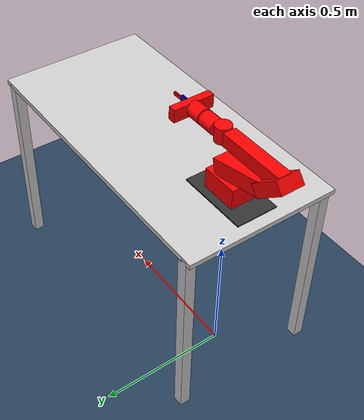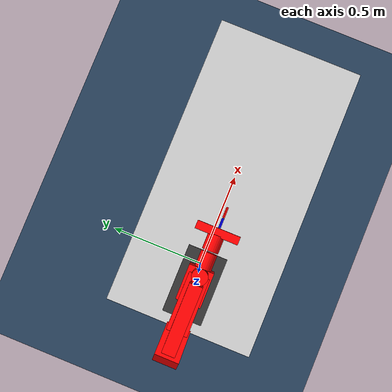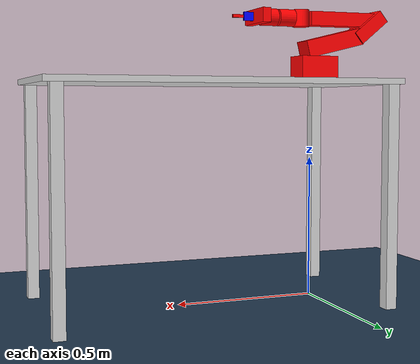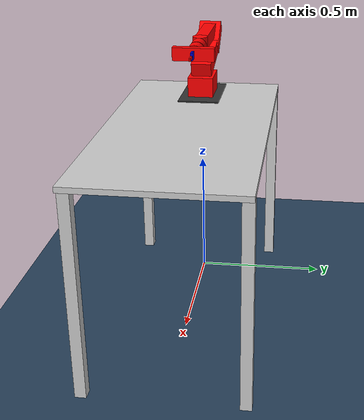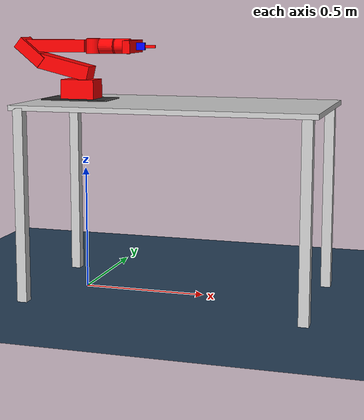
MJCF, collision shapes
<mujoco model="airbot_play">

  <compiler angle="radian" meshdir="../../meshes/" texturedir="../../meshes/" autolimits="true"/>
  <option integrator="implicitfast" />

  <include file="../scene/skybox.xml"/>
  <include file="airbot_play/airbot_play_dependencies.xml"/>
  <include file="airbot_play/airbot_play_appendix.xml"/>

  <worldbody>
    <body name="airbot_play_pose" pos="0 0 0.78" euler="0 0 0">
      <include file="airbot_play/airbot_play.xml"/>
    </body>
  </worldbody>

  <actuator>
    <include file="airbot_play/airbot_play_control.xml"/>
  </actuator>

  <sensor>
    <include file="airbot_play/airbot_play_sensor.xml"/>
  </sensor>

  <keyframe>
    <key name="home" qpos='0 -1 1.2 1.5708 -1.2 -1.5708 0 0' ctrl='0 -1 1.2 1.5708 -1.2 -1.5708 0'/>
  </keyframe>

</mujoco>

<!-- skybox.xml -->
<mujocoinclude>
  <statistic center="0.3 0 0.4" extent="1"/>
  <visual>
    <headlight diffuse="0.6 0.6 0.6" ambient="0.3 0.3 0.3" specular="0 0 0"/>
    <rgba haze="0.15 0.25 0.35 1"/>
    <global azimuth="120" elevation="-20"/>
  </visual>
  <asset>
    <texture type="skybox" builtin="gradient" rgb1="0.3 0.5 0.7" rgb2="0 0 0" width="512" height="3072"/>
    <texture type="2d" name="groundplane" builtin="checker" mark="edge" rgb1="0.2 0.3 0.4" rgb2="0.1 0.2 0.3" markrgb="0.8 0.8 0.8" width="300" height="300"/>
    <material name="groundplane" texture="groundplane" texuniform="true" texrepeat="5 5" reflectance="0.2"/>
  </asset>
  <worldbody>
    <camera name="high" pos="0.851 -1.066 1.602" xyaxes="0.915 0.404 0.000 -0.126 0.285 0.950"/>
    <camera name="low" pos="0.524 -0.747 1.248" xyaxes="0.921 0.389 -0.000 -0.114 0.269 0.956"/>
    <light pos="1 0 2." dir="-0.5 0 -0.8"/>
    <geom name="floor" size="0 0 0.05" type="plane" material="groundplane"/>
    <body name="skybox_table" pos="0.4 0 0" euler="0 0 1.5708">
      <geom size="0.3 0.6 0.01" pos="0 0 0.77" type="box" rgba="0.8 0.8 0.8 1" condim="4" solimp="2 1 0.01" solref="0.01 1" friction="1 0.005 0.0001"/>
      <geom size="0.02 0.02 0.385" pos=" 0.28  0.56 0.385" type="box" contype="0" conaffinity="0" rgba="0.8 0.8 0.8 1" />
      <geom size="0.02 0.02 0.385" pos="-0.28  0.56 0.385" type="box" contype="0" conaffinity="0" rgba="0.8 0.8 0.8 1" />
      <geom size="0.02 0.02 0.385" pos=" 0.28 -0.56 0.385" type="box" contype="0" conaffinity="0" rgba="0.8 0.8 0.8 1" />
      <geom size="0.02 0.02 0.385" pos="-0.28 -0.56 0.385" type="box" contype="0" conaffinity="0" rgba="0.8 0.8 0.8 1" />
    </body>
  </worldbody>
</mujocoinclude>

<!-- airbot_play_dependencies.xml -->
<mujocoinclude>
  <default>

    <default class='aribot_play'>
      <default class="visual">
        <geom group="2" type="mesh" contype="0" conaffinity="0"/>
      </default>
      <default class="collision">
        <geom group="3" condim="6" solimp="2 1 0.01" solref="0.001 10" friction="1 0.005 0.0001" type="mesh"/>
      </default>
      <default class='joint1'>
        <joint axis='0 0 1' range="-3.14 2.09" actuatorfrcrange="-24 24" damping="0.2" frictionloss='15' />
        <position ctrlrange="-3.14 2.09"/>
      </default>
      <default class='joint2'>
        <joint axis='0 0 1' range="-2.96 0.17" actuatorfrcrange="-24 24" damping="0.2" frictionloss='15' />
        <position ctrlrange="-2.96 0.17" />
      </default>
      <default class='joint3'>
        <joint axis='0 0 1' range='-0.087 3.14' actuatorfrcrange="-24 24" damping="0.2" frictionloss='15' />
        <position ctrlrange='-0.087 3.14'/>
      </default>
      <default class='joint4'>
        <joint axis='0 0 1' range="-2.96 2.96" actuatorfrcrange="-8 8" damping="0.1" frictionloss='5' />
        <position ctrlrange="-2.96 2.96"/>
      </default>
      <default class='joint5'>
        <joint axis='0 0 1' range="-1.74 1.74" actuatorfrcrange="-8 8" damping="0.1" frictionloss='5' />
        <position ctrlrange="-1.74 1.74"/>
      </default>
      <default class='joint6'>
        <joint axis='0 0 1' range="-3.14 3.14" actuatorfrcrange="-8 8" damping="0.1" frictionloss='5' />
        <position ctrlrange="-3.14 3.14"/>
      </default>
      <default class='finger1'>
        <joint axis='0 1 0' range="-0.04 0" type='slide' damping="2"/>
      </default>
      <default class='finger2'>
        <joint axis='0 1 0' range="0 0.04" type='slide' damping="2"/>
      </default>
    </default>
    <site size="0.001" group="3"/>

  </default>

  <asset>
    <material name="Paint_Matte_Black" specular="0.5" shininess="0.5" rgba="0.00111266039 0.00111266039 0.00111266039 1.0"/>
    <material name="Paint_Metallic_White" specular="0.5" shininess="0.5" rgba="0.928523183 0.928523183 0.928523123 1.0"/>
    <material name="Gree_Light_Base" specular="0.5" shininess="0.5" rgba="0.6 1 1 1"/>
  </asset>

  <asset>
    <mesh name="arm_base_0" file="airbot_play/arm_base_0.obj"/>
    <mesh name="arm_base_1" file="airbot_play/arm_base_1.obj"/>
    <mesh name="link1" file="airbot_play/link1.obj"/>
    <mesh name="link2_0" file="airbot_play/link2_0.obj"/>
    <mesh name="link2_1" file="airbot_play/link2_1.obj"/>
    <mesh name="link3_0" file="airbot_play/link3_0.obj"/>
    <mesh name="link3_1" file="airbot_play/link3_1.obj"/>
    <mesh name="link4" file="airbot_play/link4.obj"/>
    <mesh name="link5_0" file="airbot_play/link5_0.obj"/>
    <mesh name="link5_1" file="airbot_play/link5_1.obj"/>
    <mesh name="link6" file="airbot_play/link6.obj"/>
    <mesh name="camera_stand" file="airbot_play/camera_stand.obj"/>
    <mesh name="left" file="airbot_play/left.obj"/>
    <mesh name="right" file="airbot_play/right.obj"/>
  </asset>

</mujocoinclude>

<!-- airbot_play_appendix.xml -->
<mujocoinclude>

  <contact>
    <exclude body1='arm_base' body2='link2'/>
  </contact>

  <tendon>
    <fixed name='gripper_gear'>
      <joint joint='endleft'  coef='-0.5'/>
      <joint joint='endright' coef='0.5'/>
    </fixed>
  </tendon>

</mujocoinclude>

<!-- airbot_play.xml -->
<mujocoinclude>
  <!-- ======= AITBOT PLAY ======= -->
  <body name="arm_base" childclass="aribot_play">
    <site name="armbase"/>
    <geom type="box" pos="-0.02 0 0.005" size="0.0806 0.1375 0.0025" rgba="0.2 0.2 0.2 1" euler="0 0 1.5708" class="collision"/>
    <geom type="box" pos="-0.015 0 0.045" size="0.07 0.05 0.04" rgba="1 0 0 0.5" class="collision"/>
    <geom mesh="arm_base_0" pos="0 0 -0.0015" material="Gree_Light_Base" class="visual"/>
    <geom mesh="arm_base_1" material="Paint_Matte_Black" class="visual"/>
    <body name="link1" pos="0 0 0.1172">
      <inertial pos="7.9126e-05 -0.002527 -0.0041359" quat="0.696716 0.716558 0.0238919 -0.0236876" mass="0.54639" diaginertia="0.000346294 0.000325437 0.000286269"/>
      <joint name="joint1" class="joint1"/>
      <geom type="mesh" material="Paint_Matte_Black" mesh="link1" class="visual"/>
      <body name="link2" quat="0.135866 0.135867 -0.69393 0.693932">
        <inertial pos="0.22493 0.0047721 0.008023" quat="-0.210875 0.632473 -0.273056 0.693506" mass="0.64621" diaginertia="0.00516535 0.00505042 0.000418626"/>
        <joint name="joint2" class="joint2"/>
        <geom type="box" pos="0.08 0.015 0" euler="0 0 0.15" size="0.11 0.03 0.04" rgba="1 0 0 1" class="collision"/>
        <geom type="box" pos="0.235 0.015 0" euler="0 0 -0.3" size="0.065 0.025 0.045" rgba="1 0 0 1" class="collision"/>
        <geom mesh="link2_0" material="Paint_Matte_Black" class="visual"/>
        <geom mesh="link2_1" material="Paint_Metallic_White" class="visual"/>
        <body name="link3" pos="0.27009 0 0" quat="0.192144 0 0 -0.981367">
          <inertial pos="0.16813 -5.5576e-05 0.0031184" quat="0.511278 0.488423 0.489191 0.510617" mass="0.26829" diaginertia="0.0031527 0.0030951 0.000239403"/>
          <joint name="joint3" class="joint3"/>
          <geom type="box" pos="0.13 0 0" size="0.13 0.025 0.025" rgba="1 0 0 1" class="collision"/>
          <geom mesh="link3_0" material="Paint_Matte_Black" class="visual"/>
          <geom mesh="link3_1" material="Paint_Metallic_White" class="visual"/>
          <body name="link4" pos="0.29015 0 0" quat="-2.59734e-06 0.707105 2.59735e-06 0.707108">
            <inertial pos="5.2436e-06 0.00040412 -0.03228" quat="0.999969 -0.000174762 -0.00792041 -6.98144e-05" mass="0.34876" diaginertia="0.000423574 0.000412 0.000126826"/>
            <joint name="joint4" class="joint4"/>
            <geom type="cylinder" pos="0 0 0" size="0.03 0.03" euler="1.5708 0 0" rgba="1 0 0 1" class="collision"/>
            <geom type="mesh" material="Paint_Matte_Black" mesh="link4" class="visual"/>
            <body name="link5" quat="0.707105 0.707108 0 0">
              <inertial pos="8.3328e-06 0.026148 0.002525" quat="0.531568 0.4663 0.4663 0.531568" mass="0.36132" diaginertia="0.0004677 0.000432922 0.000178178"/>
              <joint name="joint5" class="joint5"/>
              <geom type="cylinder" pos="0 0.06 0" size="0.03 0.03" euler="1.5708 0 0" rgba="1 0 0 1" class="collision"/>
              <geom mesh="link5_0" material="Paint_Matte_Black" class="visual"/>
              <geom mesh="link5_1" material="Paint_Metallic_White" class="visual"/>
              <body name="link6" pos="0 0.23645 0" quat="0.499998 -0.5 0.5 0.500002">
                <body pos="-0.105 0 -0.12" euler="3.1416 0 1.5708">
                  <camera name="eye" euler="-0.5236 0 0" fovy="72.5376526571421"/>
                </body>
                <inertial pos="-0.0047053 7.3857e-05 -0.12293" mass="0.53855" diaginertia="5e-05 5e-05 3.85e-05"/>
                <joint name="joint6" class="joint6"/>
                <geom type="cylinder" pos="0 0 -0.11" size="0.03 0.03" euler="0 0 0" rgba="1 0 0 1" class="collision"/>
                <geom type="box" pos="0 0 -0.07" size="0.025 0.08 0.015" rgba="1 0 0 1" class="collision"/>
                <geom type="mesh" material="Paint_Matte_Black" mesh="link6" class="visual"/>
                <geom type="mesh" material="Paint_Matte_Black" mesh="camera_stand" class="visual"/>
                <site name="endpoint" pos='0 0 0.015' euler="0 -1.5708 0"/>
                <body name="right" pos="0 0 0">
                  <inertial pos="-0.048742 0.0096369 0.00044322" quat="0.757393 0.0415116 0.0313705 0.650883" mass="0.0626" diaginertia="2.79281e-05 1.90181e-05 1.21737e-05"/>
                  <joint name="endright" class='finger2'/>
                  <geom type="mesh" mesh="right" material="Paint_Matte_Black" class="visual"/>
                  <geom type="box" size=".00525 .002 .02" pos="0 0.002 0.005" rgba="1 0 0 1" class="collision"/>
                  <geom type="box" size=".015 .002 .018" pos="0 0.002 -0.035" rgba="0 0 1 1" class="collision"/>
                </body>
                <body name="left" pos="0 0 0">
                  <inertial pos="-0.049039 -0.0096764 0.00038868" quat="0.650491 0.0296695 0.0398251 0.757889" mass="0.061803" diaginertia="2.74809e-05 1.88104e-05 1.19127e-05"/>
                  <joint name="endleft" class='finger1'/>
                  <geom type="mesh" mesh="left" material="Paint_Matte_Black" class="visual"/>
                  <geom type="box" size=".00525 .002 .02" pos="0 -0.002 0.005" rgba="1 0 0 1" class="collision"/>
                  <geom type="box" size=".015 .002 .018" pos="0 -0.002 -0.035" rgba="0 0 1 1" class="collision"/>
                </body>
              </body>
            </body>
          </body>
        </body>
      </body>
    </body>
  </body>

</mujocoinclude>

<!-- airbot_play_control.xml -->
<mujocoinclude>
  <position name="joint1" ctrllimited="true" ctrlrange="-3.14 2.09"  joint="joint1" kp="1000" user="1" forcelimited="true" forcerange="-300 300"/>
  <position name="joint2" ctrllimited="true" ctrlrange="-2.96 0.17"  joint="joint2" kp="1000" user="1" forcelimited="true" forcerange="-300 300"/>
  <position name="joint3" ctrllimited="true" ctrlrange="-0.087 3.14" joint="joint3" kp="1000" user="1" forcelimited="true" forcerange="-300 300"/>
  <position name="joint4" ctrllimited="true" ctrlrange="-2.96 2.96"  joint="joint4" kp="350" user="1" forcelimited="true" forcerange="-300 300"/>
  <position name="joint5" ctrllimited="true" ctrlrange="-1.74 1.74"  joint="joint5" kp="350" user="1" forcelimited="true" forcerange="-300 300"/>
  <position name="joint6" ctrllimited="true" ctrlrange="-3.14 3.14"  joint="joint6" kp="100" user="1" forcelimited="true" forcerange="-300 300"/>
  <position name='gripper' tendon='gripper_gear' ctrllimited="true" ctrlrange="0. 0.04" kp="300" kv="5" forcelimited="true" forcerange="-100 100"/>
</mujocoinclude>

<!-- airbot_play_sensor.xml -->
<mujocoinclude>

  <jointpos name="joint1_pos" joint="joint1" />
  <jointpos name="joint2_pos" joint="joint2" />
  <jointpos name="joint3_pos" joint="joint3" />
  <jointpos name="joint4_pos" joint="joint4" />
  <jointpos name="joint5_pos" joint="joint5" />
  <jointpos name="joint6_pos" joint="joint6" />
  <tendonpos name="gripper_pos" tendon="gripper_gear" />

  <jointvel name="joint1_vel" joint="joint1" />
  <jointvel name="joint2_vel" joint="joint2" />
  <jointvel name="joint3_vel" joint="joint3" />
  <jointvel name="joint4_vel" joint="joint4" />
  <jointvel name="joint5_vel" joint="joint5" />
  <jointvel name="joint6_vel" joint="joint6" />
  <tendonvel name="gripper_vel" tendon="gripper_gear" />

  <jointactuatorfrc name="joint1_torque" joint="joint1" />
  <jointactuatorfrc name="joint2_torque" joint="joint2" />
  <jointactuatorfrc name="joint3_torque" joint="joint3" />
  <jointactuatorfrc name="joint4_torque" joint="joint4" />
  <jointactuatorfrc name="joint5_torque" joint="joint5" />
  <jointactuatorfrc name="joint6_torque" joint="joint6" />
  <jointactuatorfrc name="gripper_torque" joint="endright" />

  <framepos name="endpoint_pos" objtype="site" objname="endpoint" reftype="site" refname="armbase"/>
  <framequat name="endpoint_quat" objtype="site" objname="endpoint" reftype="site" refname="armbase"/>
  <framelinvel name="endpoint_vel" objtype="site" objname="endpoint" reftype="site" refname="armbase"/>
  <gyro name="endpoint_gyro" site="endpoint"/>
  <accelerometer name="endpoint_acc" site="endpoint" />

</mujocoinclude>
